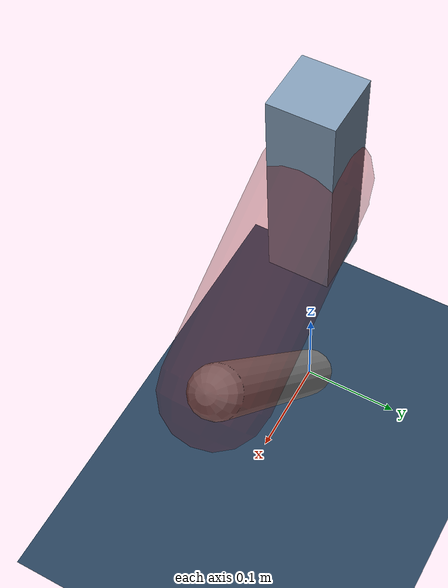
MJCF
<mujoco model="Hopper2D">
	<compiler inertiafromgeom="true" angle="radian" />
	<option timestep="0.001" integrator="implicit" cone="elliptic" solver="Newton" tolerance="1e-10" />

	<default>
		<geom contype="1" conaffinity="1" condim="3" friction="2 0.005 0.0001" solref="0.005 1" />
		<joint limited="true" damping="0.1" />
	</default>

	<asset>
		<texture name="skybox" type="skybox" builtin="gradient" rgb1=".4 .6 .8" rgb2="0 0 0" width="800" height="800" />
		<texture name="grid" type="2d" builtin="checker" rgb1=".1 .2 .3" rgb2=".2 .3 .4" width="300" height="300" mark="edge" markrgb=".2 .3 .4" />
		<material name="ground" texture="grid" texrepeat="1 1" texuniform="true" reflectance="0.1" />
		<material name="leg" rgba="0.5 0.6 0.7 1" />
	</asset>

	<worldbody>

		<geom name="floor" type="plane" size="5 5 0.25" material="ground" />

		<light directional="false" diffuse="0.8 0.8 0.8" specular="0.3 0.3 0.3" pos="0 0 2" dir="0 0 -1" />
		<light mode="targetbodycom" target="base" directional="false" diffuse="0.8 0.8 0.8" specular="0.3 0.3 0.3" pos="0 0 2" dir="0 0 -1" />

		<camera name="fixed" pos="0 -2 1" xyaxes="1 0 0 0 0 1" />
		<camera name="tracking" mode="trackcom" pos="0 -3 1" />

		<body name="root" pos="0 0 0.31811601624953373">
			<joint name="slide_x" type="slide" axis="1 0 0" range="-100 100" />
			<joint name="slide_z" type="slide" axis="0 0 1" range="0 10" />

			<body name="base" pos="0 0 0">
				<geom name="torso" type="box" size="0.03 0.03 0.1" mass="2.029" material="leg" />

				<body name="link1" pos="0 0 0" euler="0 0.4730976914627818 0">
					<joint type="hinge" axis="0 -1 0" pos="0 0 0" name="hinge1" limited="true" range="-3.14 3.14" stiffness="0" damping="0.1" />
					<geom name="thigh" type="capsule" fromto="0 0 0 0.19754399851326446 0 0" size="0.05" rgba="0.5 0 0 0.3" mass="0.7235599962831611" />

					<body name="link2" pos="0.19754399851326446 0 0" euler="0 1.7544397667402383 0">
						<joint type="hinge" axis="0 -1 0" pos="0 0 0" name="hinge2" limited="true" range="-3.14 3.14" stiffness="0" damping="0.1" />
						<geom name="shank" type="capsule" fromto="0 0 0 0.2880175559852143 0 0" size="0.025" mass="0.4737140447881715" />

					</body>
				</body>
			</body>
		</body>
	</worldbody>

	<actuator>
		<motor name="torque1" joint="hinge1" ctrlrange="-14.737580379941184 14.737580379941184" ctrllimited="true" gear="1" />
		<motor name="torque2" joint="hinge2" ctrlrange="-87.56940536396715 87.56940536396715" ctrllimited="true" gear="1" />
	</actuator>
</mujoco>
